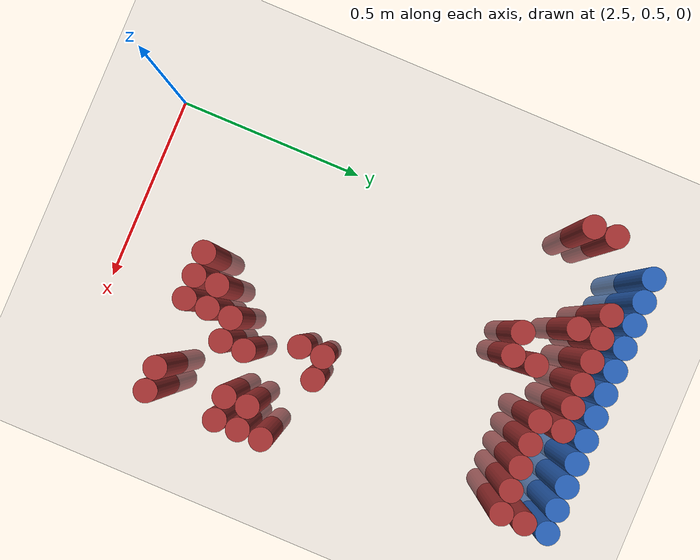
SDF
<sdf version="1.6">
 <world name="default">
  <model name="ground_plane">
   <static>1</static>
   <link name="link">
    <collision name="collision">
     <geometry><plane><normal>0 0 1</normal><size>100 100</size></plane></geometry>
     <surface><friction><ode><mu>100</mu><mu2>50</mu2></ode></friction></surface>
    </collision>
    <visual name="visual">
     <cast_shadows>0</cast_shadows>
     <geometry><plane><normal>0 0 1</normal><size>100 100</size></plane></geometry>
     <material>
      <script><uri>file://media/materials/scripts/gazebo.material</uri><name>Gazebo/Grey</name></script>
     </material>
    </visual>
   </link>
  </model>
  <model name="unit_cylinder_102">
   <static>1</static>
   <pose>2.490000 1.770000 0.000000 0.000000 0.000000 0.000000</pose>
   <link name="link">
    <inertial>
     <mass>1</mass>
     <inertia><ixx>0.145833</ixx><ixy>0</ixy><ixz>0</ixz><iyy>0.145833</iyy><iyz>0</iyz><izz>0.125</izz></inertia>
    </inertial>
    <collision name="collision">
     <geometry><cylinder><radius>0.030000</radius><length>0.5</length></cylinder></geometry>
    </collision>
    <visual name="visual">
     <geometry><cylinder><radius>0.030000</radius><length>0.5</length></cylinder></geometry>
     <material>
      <ambient>0.152000 0.379000 0.720000 1</ambient>
      <diffuse>0.152000 0.379000 0.720000 1</diffuse>
     </material>
     <material>
      <script><name>Gazebo/Grey</name><uri>file://media/materials/scripts/gazebo.material</uri></script>
     </material>
    </visual>
   </link>
  </model>
  <model name="unit_cylinder_103">
   <static>1</static>
   <pose>2.550000 1.770000 0.000000 0.000000 0.000000 0.000000</pose>
   <link name="link">
    <inertial>
     <mass>1</mass>
     <inertia><ixx>0.145833</ixx><ixy>0</ixy><ixz>0</ixz><iyy>0.145833</iyy><iyz>0</iyz><izz>0.125</izz></inertia>
    </inertial>
    <collision name="collision">
     <geometry><cylinder><radius>0.030000</radius><length>0.5</length></cylinder></geometry>
    </collision>
    <visual name="visual">
     <geometry><cylinder><radius>0.030000</radius><length>0.5</length></cylinder></geometry>
     <material>
      <ambient>0.152000 0.379000 0.720000 1</ambient>
      <diffuse>0.152000 0.379000 0.720000 1</diffuse>
     </material>
     <material>
      <script><name>Gazebo/Grey</name><uri>file://media/materials/scripts/gazebo.material</uri></script>
     </material>
    </visual>
   </link>
  </model>
  <model name="unit_cylinder_104">
   <static>1</static>
   <pose>2.610000 1.770000 0.000000 0.000000 0.000000 0.000000</pose>
   <link name="link">
    <inertial>
     <mass>1</mass>
     <inertia><ixx>0.145833</ixx><ixy>0</ixy><ixz>0</ixz><iyy>0.145833</iyy><iyz>0</iyz><izz>0.125</izz></inertia>
    </inertial>
    <collision name="collision">
     <geometry><cylinder><radius>0.030000</radius><length>0.5</length></cylinder></geometry>
    </collision>
    <visual name="visual">
     <geometry><cylinder><radius>0.030000</radius><length>0.5</length></cylinder></geometry>
     <material>
      <ambient>0.152000 0.379000 0.720000 1</ambient>
      <diffuse>0.152000 0.379000 0.720000 1</diffuse>
     </material>
     <material>
      <script><name>Gazebo/Grey</name><uri>file://media/materials/scripts/gazebo.material</uri></script>
     </material>
    </visual>
   </link>
  </model>
  <model name="unit_cylinder_105">
   <static>1</static>
   <pose>2.670000 1.770000 0.000000 0.000000 0.000000 0.000000</pose>
   <link name="link">
    <inertial>
     <mass>1</mass>
     <inertia><ixx>0.145833</ixx><ixy>0</ixy><ixz>0</ixz><iyy>0.145833</iyy><iyz>0</iyz><izz>0.125</izz></inertia>
    </inertial>
    <collision name="collision">
     <geometry><cylinder><radius>0.030000</radius><length>0.5</length></cylinder></geometry>
    </collision>
    <visual name="visual">
     <geometry><cylinder><radius>0.030000</radius><length>0.5</length></cylinder></geometry>
     <material>
      <ambient>0.152000 0.379000 0.720000 1</ambient>
      <diffuse>0.152000 0.379000 0.720000 1</diffuse>
     </material>
     <material>
      <script><name>Gazebo/Grey</name><uri>file://media/materials/scripts/gazebo.material</uri></script>
     </material>
    </visual>
   </link>
  </model>
  <model name="unit_cylinder_106">
   <static>1</static>
   <pose>2.730000 1.770000 0.000000 0.000000 0.000000 0.000000</pose>
   <link name="link">
    <inertial>
     <mass>1</mass>
     <inertia><ixx>0.145833</ixx><ixy>0</ixy><ixz>0</ixz><iyy>0.145833</iyy><iyz>0</iyz><izz>0.125</izz></inertia>
    </inertial>
    <collision name="collision">
     <geometry><cylinder><radius>0.030000</radius><length>0.5</length></cylinder></geometry>
    </collision>
    <visual name="visual">
     <geometry><cylinder><radius>0.030000</radius><length>0.5</length></cylinder></geometry>
     <material>
      <ambient>0.152000 0.379000 0.720000 1</ambient>
      <diffuse>0.152000 0.379000 0.720000 1</diffuse>
     </material>
     <material>
      <script><name>Gazebo/Grey</name><uri>file://media/materials/scripts/gazebo.material</uri></script>
     </material>
    </visual>
   </link>
  </model>
  <model name="unit_cylinder_107">
   <static>1</static>
   <pose>2.790000 1.770000 0.000000 0.000000 0.000000 0.000000</pose>
   <link name="link">
    <inertial>
     <mass>1</mass>
     <inertia><ixx>0.145833</ixx><ixy>0</ixy><ixz>0</ixz><iyy>0.145833</iyy><iyz>0</iyz><izz>0.125</izz></inertia>
    </inertial>
    <collision name="collision">
     <geometry><cylinder><radius>0.030000</radius><length>0.5</length></cylinder></geometry>
    </collision>
    <visual name="visual">
     <geometry><cylinder><radius>0.030000</radius><length>0.5</length></cylinder></geometry>
     <material>
      <ambient>0.152000 0.379000 0.720000 1</ambient>
      <diffuse>0.152000 0.379000 0.720000 1</diffuse>
     </material>
     <material>
      <script><name>Gazebo/Grey</name><uri>file://media/materials/scripts/gazebo.material</uri></script>
     </material>
    </visual>
   </link>
  </model>
  <model name="unit_cylinder_108">
   <static>1</static>
   <pose>2.850000 1.770000 0.000000 0.000000 0.000000 0.000000</pose>
   <link name="link">
    <inertial>
     <mass>1</mass>
     <inertia><ixx>0.145833</ixx><ixy>0</ixy><ixz>0</ixz><iyy>0.145833</iyy><iyz>0</iyz><izz>0.125</izz></inertia>
    </inertial>
    <collision name="collision">
     <geometry><cylinder><radius>0.030000</radius><length>0.5</length></cylinder></geometry>
    </collision>
    <visual name="visual">
     <geometry><cylinder><radius>0.030000</radius><length>0.5</length></cylinder></geometry>
     <material>
      <ambient>0.152000 0.379000 0.720000 1</ambient>
      <diffuse>0.152000 0.379000 0.720000 1</diffuse>
     </material>
     <material>
      <script><name>Gazebo/Grey</name><uri>file://media/materials/scripts/gazebo.material</uri></script>
     </material>
    </visual>
   </link>
  </model>
  <model name="unit_cylinder_109">
   <static>1</static>
   <pose>2.910000 1.770000 0.000000 0.000000 0.000000 0.000000</pose>
   <link name="link">
    <inertial>
     <mass>1</mass>
     <inertia><ixx>0.145833</ixx><ixy>0</ixy><ixz>0</ixz><iyy>0.145833</iyy><iyz>0</iyz><izz>0.125</izz></inertia>
    </inertial>
    <collision name="collision">
     <geometry><cylinder><radius>0.030000</radius><length>0.5</length></cylinder></geometry>
    </collision>
    <visual name="visual">
     <geometry><cylinder><radius>0.030000</radius><length>0.5</length></cylinder></geometry>
     <material>
      <ambient>0.152000 0.379000 0.720000 1</ambient>
      <diffuse>0.152000 0.379000 0.720000 1</diffuse>
     </material>
     <material>
      <script><name>Gazebo/Grey</name><uri>file://media/materials/scripts/gazebo.material</uri></script>
     </material>
    </visual>
   </link>
  </model>
  <model name="unit_cylinder_110">
   <static>1</static>
   <pose>2.970000 1.770000 0.000000 0.000000 0.000000 0.000000</pose>
   <link name="link">
    <inertial>
     <mass>1</mass>
     <inertia><ixx>0.145833</ixx><ixy>0</ixy><ixz>0</ixz><iyy>0.145833</iyy><iyz>0</iyz><izz>0.125</izz></inertia>
    </inertial>
    <collision name="collision">
     <geometry><cylinder><radius>0.030000</radius><length>0.5</length></cylinder></geometry>
    </collision>
    <visual name="visual">
     <geometry><cylinder><radius>0.030000</radius><length>0.5</length></cylinder></geometry>
     <material>
      <ambient>0.152000 0.379000 0.720000 1</ambient>
      <diffuse>0.152000 0.379000 0.720000 1</diffuse>
     </material>
     <material>
      <script><name>Gazebo/Grey</name><uri>file://media/materials/scripts/gazebo.material</uri></script>
     </material>
    </visual>
   </link>
  </model>
  <model name="unit_cylinder_111">
   <static>1</static>
   <pose>3.030000 1.770000 0.000000 0.000000 0.000000 0.000000</pose>
   <link name="link">
    <inertial>
     <mass>1</mass>
     <inertia><ixx>0.145833</ixx><ixy>0</ixy><ixz>0</ixz><iyy>0.145833</iyy><iyz>0</iyz><izz>0.125</izz></inertia>
    </inertial>
    <collision name="collision">
     <geometry><cylinder><radius>0.030000</radius><length>0.5</length></cylinder></geometry>
    </collision>
    <visual name="visual">
     <geometry><cylinder><radius>0.030000</radius><length>0.5</length></cylinder></geometry>
     <material>
      <ambient>0.152000 0.379000 0.720000 1</ambient>
      <diffuse>0.152000 0.379000 0.720000 1</diffuse>
     </material>
     <material>
      <script><name>Gazebo/Grey</name><uri>file://media/materials/scripts/gazebo.material</uri></script>
     </material>
    </visual>
   </link>
  </model>
  <model name="unit_cylinder_112">
   <static>1</static>
   <pose>3.090000 1.770000 0.000000 0.000000 0.000000 0.000000</pose>
   <link name="link">
    <inertial>
     <mass>1</mass>
     <inertia><ixx>0.145833</ixx><ixy>0</ixy><ixz>0</ixz><iyy>0.145833</iyy><iyz>0</iyz><izz>0.125</izz></inertia>
    </inertial>
    <collision name="collision">
     <geometry><cylinder><radius>0.030000</radius><length>0.5</length></cylinder></geometry>
    </collision>
    <visual name="visual">
     <geometry><cylinder><radius>0.030000</radius><length>0.5</length></cylinder></geometry>
     <material>
      <ambient>0.152000 0.379000 0.720000 1</ambient>
      <diffuse>0.152000 0.379000 0.720000 1</diffuse>
     </material>
     <material>
      <script><name>Gazebo/Grey</name><uri>file://media/materials/scripts/gazebo.material</uri></script>
     </material>
    </visual>
   </link>
  </model>
  <model name="unit_cylinder_113">
   <static>1</static>
   <pose>3.150000 1.770000 0.000000 0.000000 0.000000 0.000000</pose>
   <link name="link">
    <inertial>
     <mass>1</mass>
     <inertia><ixx>0.145833</ixx><ixy>0</ixy><ixz>0</ixz><iyy>0.145833</iyy><iyz>0</iyz><izz>0.125</izz></inertia>
    </inertial>
    <collision name="collision">
     <geometry><cylinder><radius>0.030000</radius><length>0.5</length></cylinder></geometry>
    </collision>
    <visual name="visual">
     <geometry><cylinder><radius>0.030000</radius><length>0.5</length></cylinder></geometry>
     <material>
      <ambient>0.152000 0.379000 0.720000 1</ambient>
      <diffuse>0.152000 0.379000 0.720000 1</diffuse>
     </material>
     <material>
      <script><name>Gazebo/Grey</name><uri>file://media/materials/scripts/gazebo.material</uri></script>
     </material>
    </visual>
   </link>
  </model>
  <model name="unit_cylinder_127">
   <static>1</static>
   <pose>2.610000 1.710000 0.000000 0.000000 0.000000 0.000000</pose>
   <link name="link">
    <inertial>
     <mass>1</mass>
     <inertia><ixx>0.145833</ixx><ixy>0</ixy><ixz>0</ixz><iyy>0.145833</iyy><iyz>0</iyz><izz>0.125</izz></inertia>
    </inertial>
    <collision name="collision">
     <geometry><cylinder><radius>0.030000</radius><length>0.5</length></cylinder></geometry>
    </collision>
    <visual name="visual">
     <geometry><cylinder><radius>0.030000</radius><length>0.5</length></cylinder></geometry>
     <material>
      <ambient>0.648000 0.192000 0.192000 1</ambient>
      <diffuse>0.648000 0.192000 0.192000 1</diffuse>
     </material>
     <material>
      <script><name>Gazebo/Grey</name><uri>file://media/materials/scripts/gazebo.material</uri></script>
     </material>
    </visual>
   </link>
  </model>
  <model name="unit_cylinder_128">
   <static>1</static>
   <pose>2.670000 1.710000 0.000000 0.000000 0.000000 0.000000</pose>
   <link name="link">
    <inertial>
     <mass>1</mass>
     <inertia><ixx>0.145833</ixx><ixy>0</ixy><ixz>0</ixz><iyy>0.145833</iyy><iyz>0</iyz><izz>0.125</izz></inertia>
    </inertial>
    <collision name="collision">
     <geometry><cylinder><radius>0.030000</radius><length>0.5</length></cylinder></geometry>
    </collision>
    <visual name="visual">
     <geometry><cylinder><radius>0.030000</radius><length>0.5</length></cylinder></geometry>
     <material>
      <ambient>0.648000 0.192000 0.192000 1</ambient>
      <diffuse>0.648000 0.192000 0.192000 1</diffuse>
     </material>
     <material>
      <script><name>Gazebo/Grey</name><uri>file://media/materials/scripts/gazebo.material</uri></script>
     </material>
    </visual>
   </link>
  </model>
  <model name="unit_cylinder_129">
   <static>1</static>
   <pose>2.730000 1.710000 0.000000 0.000000 0.000000 0.000000</pose>
   <link name="link">
    <inertial>
     <mass>1</mass>
     <inertia><ixx>0.145833</ixx><ixy>0</ixy><ixz>0</ixz><iyy>0.145833</iyy><iyz>0</iyz><izz>0.125</izz></inertia>
    </inertial>
    <collision name="collision">
     <geometry><cylinder><radius>0.030000</radius><length>0.5</length></cylinder></geometry>
    </collision>
    <visual name="visual">
     <geometry><cylinder><radius>0.030000</radius><length>0.5</length></cylinder></geometry>
     <material>
      <ambient>0.648000 0.192000 0.192000 1</ambient>
      <diffuse>0.648000 0.192000 0.192000 1</diffuse>
     </material>
     <material>
      <script><name>Gazebo/Grey</name><uri>file://media/materials/scripts/gazebo.material</uri></script>
     </material>
    </visual>
   </link>
  </model>
  <model name="unit_cylinder_130">
   <static>1</static>
   <pose>2.790000 1.710000 0.000000 0.000000 0.000000 0.000000</pose>
   <link name="link">
    <inertial>
     <mass>1</mass>
     <inertia><ixx>0.145833</ixx><ixy>0</ixy><ixz>0</ixz><iyy>0.145833</iyy><iyz>0</iyz><izz>0.125</izz></inertia>
    </inertial>
    <collision name="collision">
     <geometry><cylinder><radius>0.030000</radius><length>0.5</length></cylinder></geometry>
    </collision>
    <visual name="visual">
     <geometry><cylinder><radius>0.030000</radius><length>0.5</length></cylinder></geometry>
     <material>
      <ambient>0.648000 0.192000 0.192000 1</ambient>
      <diffuse>0.648000 0.192000 0.192000 1</diffuse>
     </material>
     <material>
      <script><name>Gazebo/Grey</name><uri>file://media/materials/scripts/gazebo.material</uri></script>
     </material>
    </visual>
   </link>
  </model>
  <model name="unit_cylinder_131">
   <static>1</static>
   <pose>2.850000 1.710000 0.000000 0.000000 0.000000 0.000000</pose>
   <link name="link">
    <inertial>
     <mass>1</mass>
     <inertia><ixx>0.145833</ixx><ixy>0</ixy><ixz>0</ixz><iyy>0.145833</iyy><iyz>0</iyz><izz>0.125</izz></inertia>
    </inertial>
    <collision name="collision">
     <geometry><cylinder><radius>0.030000</radius><length>0.5</length></cylinder></geometry>
    </collision>
    <visual name="visual">
     <geometry><cylinder><radius>0.030000</radius><length>0.5</length></cylinder></geometry>
     <material>
      <ambient>0.648000 0.192000 0.192000 1</ambient>
      <diffuse>0.648000 0.192000 0.192000 1</diffuse>
     </material>
     <material>
      <script><name>Gazebo/Grey</name><uri>file://media/materials/scripts/gazebo.material</uri></script>
     </material>
    </visual>
   </link>
  </model>
  <model name="unit_cylinder_132">
   <static>1</static>
   <pose>2.910000 1.710000 0.000000 0.000000 0.000000 0.000000</pose>
   <link name="link">
    <inertial>
     <mass>1</mass>
     <inertia><ixx>0.145833</ixx><ixy>0</ixy><ixz>0</ixz><iyy>0.145833</iyy><iyz>0</iyz><izz>0.125</izz></inertia>
    </inertial>
    <collision name="collision">
     <geometry><cylinder><radius>0.030000</radius><length>0.5</length></cylinder></geometry>
    </collision>
    <visual name="visual">
     <geometry><cylinder><radius>0.030000</radius><length>0.5</length></cylinder></geometry>
     <material>
      <ambient>0.648000 0.192000 0.192000 1</ambient>
      <diffuse>0.648000 0.192000 0.192000 1</diffuse>
     </material>
     <material>
      <script><name>Gazebo/Grey</name><uri>file://media/materials/scripts/gazebo.material</uri></script>
     </material>
    </visual>
   </link>
  </model>
  <model name="unit_cylinder_133">
   <static>1</static>
   <pose>3.150000 1.710000 0.000000 0.000000 0.000000 0.000000</pose>
   <link name="link">
    <inertial>
     <mass>1</mass>
     <inertia><ixx>0.145833</ixx><ixy>0</ixy><ixz>0</ixz><iyy>0.145833</iyy><iyz>0</iyz><izz>0.125</izz></inertia>
    </inertial>
    <collision name="collision">
     <geometry><cylinder><radius>0.030000</radius><length>0.5</length></cylinder></geometry>
    </collision>
    <visual name="visual">
     <geometry><cylinder><radius>0.030000</radius><length>0.5</length></cylinder></geometry>
     <material>
      <ambient>0.648000 0.192000 0.192000 1</ambient>
      <diffuse>0.648000 0.192000 0.192000 1</diffuse>
     </material>
     <material>
      <script><name>Gazebo/Grey</name><uri>file://media/materials/scripts/gazebo.material</uri></script>
     </material>
    </visual>
   </link>
  </model>
  <model name="unit_cylinder_143">
   <static>1</static>
   <pose>2.430000 1.650000 0.000000 0.000000 0.000000 0.000000</pose>
   <link name="link">
    <inertial>
     <mass>1</mass>
     <inertia><ixx>0.145833</ixx><ixy>0</ixy><ixz>0</ixz><iyy>0.145833</iyy><iyz>0</iyz><izz>0.125</izz></inertia>
    </inertial>
    <collision name="collision">
     <geometry><cylinder><radius>0.030000</radius><length>0.5</length></cylinder></geometry>
    </collision>
    <visual name="visual">
     <geometry><cylinder><radius>0.030000</radius><length>0.5</length></cylinder></geometry>
     <material>
      <ambient>0.648000 0.192000 0.192000 1</ambient>
      <diffuse>0.648000 0.192000 0.192000 1</diffuse>
     </material>
     <material>
      <script><name>Gazebo/Grey</name><uri>file://media/materials/scripts/gazebo.material</uri></script>
     </material>
    </visual>
   </link>
  </model>
  <model name="unit_cylinder_144">
   <static>1</static>
   <pose>2.670000 1.650000 0.000000 0.000000 0.000000 0.000000</pose>
   <link name="link">
    <inertial>
     <mass>1</mass>
     <inertia><ixx>0.145833</ixx><ixy>0</ixy><ixz>0</ixz><iyy>0.145833</iyy><iyz>0</iyz><izz>0.125</izz></inertia>
    </inertial>
    <collision name="collision">
     <geometry><cylinder><radius>0.030000</radius><length>0.5</length></cylinder></geometry>
    </collision>
    <visual name="visual">
     <geometry><cylinder><radius>0.030000</radius><length>0.5</length></cylinder></geometry>
     <material>
      <ambient>0.648000 0.192000 0.192000 1</ambient>
      <diffuse>0.648000 0.192000 0.192000 1</diffuse>
     </material>
     <material>
      <script><name>Gazebo/Grey</name><uri>file://media/materials/scripts/gazebo.material</uri></script>
     </material>
    </visual>
   </link>
  </model>
  <model name="unit_cylinder_145">
   <static>1</static>
   <pose>2.910000 1.650000 0.000000 0.000000 0.000000 0.000000</pose>
   <link name="link">
    <inertial>
     <mass>1</mass>
     <inertia><ixx>0.145833</ixx><ixy>0</ixy><ixz>0</ixz><iyy>0.145833</iyy><iyz>0</iyz><izz>0.125</izz></inertia>
    </inertial>
    <collision name="collision">
     <geometry><cylinder><radius>0.030000</radius><length>0.5</length></cylinder></geometry>
    </collision>
    <visual name="visual">
     <geometry><cylinder><radius>0.030000</radius><length>0.5</length></cylinder></geometry>
     <material>
      <ambient>0.648000 0.192000 0.192000 1</ambient>
      <diffuse>0.648000 0.192000 0.192000 1</diffuse>
     </material>
     <material>
      <script><name>Gazebo/Grey</name><uri>file://media/materials/scripts/gazebo.material</uri></script>
     </material>
    </visual>
   </link>
  </model>
  <model name="unit_cylinder_146">
   <static>1</static>
   <pose>2.970000 1.650000 0.000000 0.000000 0.000000 0.000000</pose>
   <link name="link">
    <inertial>
     <mass>1</mass>
     <inertia><ixx>0.145833</ixx><ixy>0</ixy><ixz>0</ixz><iyy>0.145833</iyy><iyz>0</iyz><izz>0.125</izz></inertia>
    </inertial>
    <collision name="collision">
     <geometry><cylinder><radius>0.030000</radius><length>0.5</length></cylinder></geometry>
    </collision>
    <visual name="visual">
     <geometry><cylinder><radius>0.030000</radius><length>0.5</length></cylinder></geometry>
     <material>
      <ambient>0.648000 0.192000 0.192000 1</ambient>
      <diffuse>0.648000 0.192000 0.192000 1</diffuse>
     </material>
     <material>
      <script><name>Gazebo/Grey</name><uri>file://media/materials/scripts/gazebo.material</uri></script>
     </material>
    </visual>
   </link>
  </model>
  <model name="unit_cylinder_147">
   <static>1</static>
   <pose>3.030000 1.650000 0.000000 0.000000 0.000000 0.000000</pose>
   <link name="link">
    <inertial>
     <mass>1</mass>
     <inertia><ixx>0.145833</ixx><ixy>0</ixy><ixz>0</ixz><iyy>0.145833</iyy><iyz>0</iyz><izz>0.125</izz></inertia>
    </inertial>
    <collision name="collision">
     <geometry><cylinder><radius>0.030000</radius><length>0.5</length></cylinder></geometry>
    </collision>
    <visual name="visual">
     <geometry><cylinder><radius>0.030000</radius><length>0.5</length></cylinder></geometry>
     <material>
      <ambient>0.648000 0.192000 0.192000 1</ambient>
      <diffuse>0.648000 0.192000 0.192000 1</diffuse>
     </material>
     <material>
      <script><name>Gazebo/Grey</name><uri>file://media/materials/scripts/gazebo.material</uri></script>
     </material>
    </visual>
   </link>
  </model>
  <model name="unit_cylinder_148">
   <static>1</static>
   <pose>3.090000 1.650000 0.000000 0.000000 0.000000 0.000000</pose>
   <link name="link">
    <inertial>
     <mass>1</mass>
     <inertia><ixx>0.145833</ixx><ixy>0</ixy><ixz>0</ixz><iyy>0.145833</iyy><iyz>0</iyz><izz>0.125</izz></inertia>
    </inertial>
    <collision name="collision">
     <geometry><cylinder><radius>0.030000</radius><length>0.5</length></cylinder></geometry>
    </collision>
    <visual name="visual">
     <geometry><cylinder><radius>0.030000</radius><length>0.5</length></cylinder></geometry>
     <material>
      <ambient>0.648000 0.192000 0.192000 1</ambient>
      <diffuse>0.648000 0.192000 0.192000 1</diffuse>
     </material>
     <material>
      <script><name>Gazebo/Grey</name><uri>file://media/materials/scripts/gazebo.material</uri></script>
     </material>
    </visual>
   </link>
  </model>
  <model name="unit_cylinder_149">
   <static>1</static>
   <pose>3.150000 1.650000 0.000000 0.000000 0.000000 0.000000</pose>
   <link name="link">
    <inertial>
     <mass>1</mass>
     <inertia><ixx>0.145833</ixx><ixy>0</ixy><ixz>0</ixz><iyy>0.145833</iyy><iyz>0</iyz><izz>0.125</izz></inertia>
    </inertial>
    <collision name="collision">
     <geometry><cylinder><radius>0.030000</radius><length>0.5</length></cylinder></geometry>
    </collision>
    <visual name="visual">
     <geometry><cylinder><radius>0.030000</radius><length>0.5</length></cylinder></geometry>
     <material>
      <ambient>0.648000 0.192000 0.192000 1</ambient>
      <diffuse>0.648000 0.192000 0.192000 1</diffuse>
     </material>
     <material>
      <script><name>Gazebo/Grey</name><uri>file://media/materials/scripts/gazebo.material</uri></script>
     </material>
    </visual>
   </link>
  </model>
  <model name="unit_cylinder_155">
   <static>1</static>
   <pose>2.430000 1.590000 0.000000 0.000000 0.000000 0.000000</pose>
   <link name="link">
    <inertial>
     <mass>1</mass>
     <inertia><ixx>0.145833</ixx><ixy>0</ixy><ixz>0</ixz><iyy>0.145833</iyy><iyz>0</iyz><izz>0.125</izz></inertia>
    </inertial>
    <collision name="collision">
     <geometry><cylinder><radius>0.030000</radius><length>0.5</length></cylinder></geometry>
    </collision>
    <visual name="visual">
     <geometry><cylinder><radius>0.030000</radius><length>0.5</length></cylinder></geometry>
     <material>
      <ambient>0.648000 0.192000 0.192000 1</ambient>
      <diffuse>0.648000 0.192000 0.192000 1</diffuse>
     </material>
     <material>
      <script><name>Gazebo/Grey</name><uri>file://media/materials/scripts/gazebo.material</uri></script>
     </material>
    </visual>
   </link>
  </model>
  <model name="unit_cylinder_156">
   <static>1</static>
   <pose>2.790000 1.590000 0.000000 0.000000 0.000000 0.000000</pose>
   <link name="link">
    <inertial>
     <mass>1</mass>
     <inertia><ixx>0.145833</ixx><ixy>0</ixy><ixz>0</ixz><iyy>0.145833</iyy><iyz>0</iyz><izz>0.125</izz></inertia>
    </inertial>
    <collision name="collision">
     <geometry><cylinder><radius>0.030000</radius><length>0.5</length></cylinder></geometry>
    </collision>
    <visual name="visual">
     <geometry><cylinder><radius>0.030000</radius><length>0.5</length></cylinder></geometry>
     <material>
      <ambient>0.648000 0.192000 0.192000 1</ambient>
      <diffuse>0.648000 0.192000 0.192000 1</diffuse>
     </material>
     <material>
      <script><name>Gazebo/Grey</name><uri>file://media/materials/scripts/gazebo.material</uri></script>
     </material>
    </visual>
   </link>
  </model>
  <model name="unit_cylinder_160">
   <static>1</static>
   <pose>2.730000 1.530000 0.000000 0.000000 0.000000 0.000000</pose>
   <link name="link">
    <inertial>
     <mass>1</mass>
     <inertia><ixx>0.145833</ixx><ixy>0</ixy><ixz>0</ixz><iyy>0.145833</iyy><iyz>0</iyz><izz>0.125</izz></inertia>
    </inertial>
    <collision name="collision">
     <geometry><cylinder><radius>0.030000</radius><length>0.5</length></cylinder></geometry>
    </collision>
    <visual name="visual">
     <geometry><cylinder><radius>0.030000</radius><length>0.5</length></cylinder></geometry>
     <material>
      <ambient>0.648000 0.192000 0.192000 1</ambient>
      <diffuse>0.648000 0.192000 0.192000 1</diffuse>
     </material>
     <material>
      <script><name>Gazebo/Grey</name><uri>file://media/materials/scripts/gazebo.material</uri></script>
     </material>
    </visual>
   </link>
  </model>
  <model name="unit_cylinder_161">
   <static>1</static>
   <pose>2.790000 1.530000 0.000000 0.000000 0.000000 0.000000</pose>
   <link name="link">
    <inertial>
     <mass>1</mass>
     <inertia><ixx>0.145833</ixx><ixy>0</ixy><ixz>0</ixz><iyy>0.145833</iyy><iyz>0</iyz><izz>0.125</izz></inertia>
    </inertial>
    <collision name="collision">
     <geometry><cylinder><radius>0.030000</radius><length>0.5</length></cylinder></geometry>
    </collision>
    <visual name="visual">
     <geometry><cylinder><radius>0.030000</radius><length>0.5</length></cylinder></geometry>
     <material>
      <ambient>0.648000 0.192000 0.192000 1</ambient>
      <diffuse>0.648000 0.192000 0.192000 1</diffuse>
     </material>
     <material>
      <script><name>Gazebo/Grey</name><uri>file://media/materials/scripts/gazebo.material</uri></script>
     </material>
    </visual>
   </link>
  </model>
  <model name="unit_cylinder_184">
   <static>1</static>
   <pose>2.970000 1.110000 0.000000 0.000000 0.000000 0.000000</pose>
   <link name="link">
    <inertial>
     <mass>1</mass>
     <inertia><ixx>0.145833</ixx><ixy>0</ixy><ixz>0</ixz><iyy>0.145833</iyy><iyz>0</iyz><izz>0.125</izz></inertia>
    </inertial>
    <collision name="collision">
     <geometry><cylinder><radius>0.030000</radius><length>0.5</length></cylinder></geometry>
    </collision>
    <visual name="visual">
     <geometry><cylinder><radius>0.030000</radius><length>0.5</length></cylinder></geometry>
     <material>
      <ambient>0.648000 0.192000 0.192000 1</ambient>
      <diffuse>0.648000 0.192000 0.192000 1</diffuse>
     </material>
     <material>
      <script><name>Gazebo/Grey</name><uri>file://media/materials/scripts/gazebo.material</uri></script>
     </material>
    </visual>
   </link>
  </model>
  <model name="unit_cylinder_185">
   <static>1</static>
   <pose>3.030000 1.110000 0.000000 0.000000 0.000000 0.000000</pose>
   <link name="link">
    <inertial>
     <mass>1</mass>
     <inertia><ixx>0.145833</ixx><ixy>0</ixy><ixz>0</ixz><iyy>0.145833</iyy><iyz>0</iyz><izz>0.125</izz></inertia>
    </inertial>
    <collision name="collision">
     <geometry><cylinder><radius>0.030000</radius><length>0.5</length></cylinder></geometry>
    </collision>
    <visual name="visual">
     <geometry><cylinder><radius>0.030000</radius><length>0.5</length></cylinder></geometry>
     <material>
      <ambient>0.648000 0.192000 0.192000 1</ambient>
      <diffuse>0.648000 0.192000 0.192000 1</diffuse>
     </material>
     <material>
      <script><name>Gazebo/Grey</name><uri>file://media/materials/scripts/gazebo.material</uri></script>
     </material>
    </visual>
   </link>
  </model>
  <model name="unit_cylinder_187">
   <static>1</static>
   <pose>2.970000 1.050000 0.000000 0.000000 0.000000 0.000000</pose>
   <link name="link">
    <inertial>
     <mass>1</mass>
     <inertia><ixx>0.145833</ixx><ixy>0</ixy><ixz>0</ixz><iyy>0.145833</iyy><iyz>0</iyz><izz>0.125</izz></inertia>
    </inertial>
    <collision name="collision">
     <geometry><cylinder><radius>0.030000</radius><length>0.5</length></cylinder></geometry>
    </collision>
    <visual name="visual">
     <geometry><cylinder><radius>0.030000</radius><length>0.5</length></cylinder></geometry>
     <material>
      <ambient>0.648000 0.192000 0.192000 1</ambient>
      <diffuse>0.648000 0.192000 0.192000 1</diffuse>
     </material>
     <material>
      <script><name>Gazebo/Grey</name><uri>file://media/materials/scripts/gazebo.material</uri></script>
     </material>
    </visual>
   </link>
  </model>
  <model name="unit_cylinder_188">
   <static>1</static>
   <pose>3.210000 1.050000 0.000000 0.000000 0.000000 0.000000</pose>
   <link name="link">
    <inertial>
     <mass>1</mass>
     <inertia><ixx>0.145833</ixx><ixy>0</ixy><ixz>0</ixz><iyy>0.145833</iyy><iyz>0</iyz><izz>0.125</izz></inertia>
    </inertial>
    <collision name="collision">
     <geometry><cylinder><radius>0.030000</radius><length>0.5</length></cylinder></geometry>
    </collision>
    <visual name="visual">
     <geometry><cylinder><radius>0.030000</radius><length>0.5</length></cylinder></geometry>
     <material>
      <ambient>0.648000 0.192000 0.192000 1</ambient>
      <diffuse>0.648000 0.192000 0.192000 1</diffuse>
     </material>
     <material>
      <script><name>Gazebo/Grey</name><uri>file://media/materials/scripts/gazebo.material</uri></script>
     </material>
    </visual>
   </link>
  </model>
  <model name="unit_cylinder_190">
   <static>1</static>
   <pose>3.150000 0.990000 0.000000 0.000000 0.000000 0.000000</pose>
   <link name="link">
    <inertial>
     <mass>1</mass>
     <inertia><ixx>0.145833</ixx><ixy>0</ixy><ixz>0</ixz><iyy>0.145833</iyy><iyz>0</iyz><izz>0.125</izz></inertia>
    </inertial>
    <collision name="collision">
     <geometry><cylinder><radius>0.030000</radius><length>0.5</length></cylinder></geometry>
    </collision>
    <visual name="visual">
     <geometry><cylinder><radius>0.030000</radius><length>0.5</length></cylinder></geometry>
     <material>
      <ambient>0.648000 0.192000 0.192000 1</ambient>
      <diffuse>0.648000 0.192000 0.192000 1</diffuse>
     </material>
     <material>
      <script><name>Gazebo/Grey</name><uri>file://media/materials/scripts/gazebo.material</uri></script>
     </material>
    </visual>
   </link>
  </model>
  <model name="unit_cylinder_191">
   <static>1</static>
   <pose>3.210000 0.990000 0.000000 0.000000 0.000000 0.000000</pose>
   <link name="link">
    <inertial>
     <mass>1</mass>
     <inertia><ixx>0.145833</ixx><ixy>0</ixy><ixz>0</ixz><iyy>0.145833</iyy><iyz>0</iyz><izz>0.125</izz></inertia>
    </inertial>
    <collision name="collision">
     <geometry><cylinder><radius>0.030000</radius><length>0.5</length></cylinder></geometry>
    </collision>
    <visual name="visual">
     <geometry><cylinder><radius>0.030000</radius><length>0.5</length></cylinder></geometry>
     <material>
      <ambient>0.648000 0.192000 0.192000 1</ambient>
      <diffuse>0.648000 0.192000 0.192000 1</diffuse>
     </material>
     <material>
      <script><name>Gazebo/Grey</name><uri>file://media/materials/scripts/gazebo.material</uri></script>
     </material>
    </visual>
   </link>
  </model>
  <model name="unit_cylinder_195">
   <static>1</static>
   <pose>3.030000 0.930000 0.000000 0.000000 0.000000 0.000000</pose>
   <link name="link">
    <inertial>
     <mass>1</mass>
     <inertia><ixx>0.145833</ixx><ixy>0</ixy><ixz>0</ixz><iyy>0.145833</iyy><iyz>0</iyz><izz>0.125</izz></inertia>
    </inertial>
    <collision name="collision">
     <geometry><cylinder><radius>0.030000</radius><length>0.5</length></cylinder></geometry>
    </collision>
    <visual name="visual">
     <geometry><cylinder><radius>0.030000</radius><length>0.5</length></cylinder></geometry>
     <material>
      <ambient>0.648000 0.192000 0.192000 1</ambient>
      <diffuse>0.648000 0.192000 0.192000 1</diffuse>
     </material>
     <material>
      <script><name>Gazebo/Grey</name><uri>file://media/materials/scripts/gazebo.material</uri></script>
     </material>
    </visual>
   </link>
  </model>
  <model name="unit_cylinder_196">
   <static>1</static>
   <pose>3.150000 0.930000 0.000000 0.000000 0.000000 0.000000</pose>
   <link name="link">
    <inertial>
     <mass>1</mass>
     <inertia><ixx>0.145833</ixx><ixy>0</ixy><ixz>0</ixz><iyy>0.145833</iyy><iyz>0</iyz><izz>0.125</izz></inertia>
    </inertial>
    <collision name="collision">
     <geometry><cylinder><radius>0.030000</radius><length>0.5</length></cylinder></geometry>
    </collision>
    <visual name="visual">
     <geometry><cylinder><radius>0.030000</radius><length>0.5</length></cylinder></geometry>
     <material>
      <ambient>0.648000 0.192000 0.192000 1</ambient>
      <diffuse>0.648000 0.192000 0.192000 1</diffuse>
     </material>
     <material>
      <script><name>Gazebo/Grey</name><uri>file://media/materials/scripts/gazebo.material</uri></script>
     </material>
    </visual>
   </link>
  </model>
  <model name="unit_cylinder_197">
   <static>1</static>
   <pose>3.210000 0.930000 0.000000 0.000000 0.000000 0.000000</pose>
   <link name="link">
    <inertial>
     <mass>1</mass>
     <inertia><ixx>0.145833</ixx><ixy>0</ixy><ixz>0</ixz><iyy>0.145833</iyy><iyz>0</iyz><izz>0.125</izz></inertia>
    </inertial>
    <collision name="collision">
     <geometry><cylinder><radius>0.030000</radius><length>0.5</length></cylinder></geometry>
    </collision>
    <visual name="visual">
     <geometry><cylinder><radius>0.030000</radius><length>0.5</length></cylinder></geometry>
     <material>
      <ambient>0.648000 0.192000 0.192000 1</ambient>
      <diffuse>0.648000 0.192000 0.192000 1</diffuse>
     </material>
     <material>
      <script><name>Gazebo/Grey</name><uri>file://media/materials/scripts/gazebo.material</uri></script>
     </material>
    </visual>
   </link>
  </model>
  <model name="unit_cylinder_201">
   <static>1</static>
   <pose>2.970000 0.870000 0.000000 0.000000 0.000000 0.000000</pose>
   <link name="link">
    <inertial>
     <mass>1</mass>
     <inertia><ixx>0.145833</ixx><ixy>0</ixy><ixz>0</ixz><iyy>0.145833</iyy><iyz>0</iyz><izz>0.125</izz></inertia>
    </inertial>
    <collision name="collision">
     <geometry><cylinder><radius>0.030000</radius><length>0.5</length></cylinder></geometry>
    </collision>
    <visual name="visual">
     <geometry><cylinder><radius>0.030000</radius><length>0.5</length></cylinder></geometry>
     <material>
      <ambient>0.648000 0.192000 0.192000 1</ambient>
      <diffuse>0.648000 0.192000 0.192000 1</diffuse>
     </material>
     <material>
      <script><name>Gazebo/Grey</name><uri>file://media/materials/scripts/gazebo.material</uri></script>
     </material>
    </visual>
   </link>
  </model>
  <model name="unit_cylinder_202">
   <static>1</static>
   <pose>3.030000 0.870000 0.000000 0.000000 0.000000 0.000000</pose>
   <link name="link">
    <inertial>
     <mass>1</mass>
     <inertia><ixx>0.145833</ixx><ixy>0</ixy><ixz>0</ixz><iyy>0.145833</iyy><iyz>0</iyz><izz>0.125</izz></inertia>
    </inertial>
    <collision name="collision">
     <geometry><cylinder><radius>0.030000</radius><length>0.5</length></cylinder></geometry>
    </collision>
    <visual name="visual">
     <geometry><cylinder><radius>0.030000</radius><length>0.5</length></cylinder></geometry>
     <material>
      <ambient>0.648000 0.192000 0.192000 1</ambient>
      <diffuse>0.648000 0.192000 0.192000 1</diffuse>
     </material>
     <material>
      <script><name>Gazebo/Grey</name><uri>file://media/materials/scripts/gazebo.material</uri></script>
     </material>
    </visual>
   </link>
  </model>
  <model name="unit_cylinder_205">
   <static>1</static>
   <pose>2.910000 0.810000 0.000000 0.000000 0.000000 0.000000</pose>
   <link name="link">
    <inertial>
     <mass>1</mass>
     <inertia><ixx>0.145833</ixx><ixy>0</ixy><ixz>0</ixz><iyy>0.145833</iyy><iyz>0</iyz><izz>0.125</izz></inertia>
    </inertial>
    <collision name="collision">
     <geometry><cylinder><radius>0.030000</radius><length>0.5</length></cylinder></geometry>
    </collision>
    <visual name="visual">
     <geometry><cylinder><radius>0.030000</radius><length>0.5</length></cylinder></geometry>
     <material>
      <ambient>0.648000 0.192000 0.192000 1</ambient>
      <diffuse>0.648000 0.192000 0.192000 1</diffuse>
     </material>
     <material>
      <script><name>Gazebo/Grey</name><uri>file://media/materials/scripts/gazebo.material</uri></script>
     </material>
    </visual>
   </link>
  </model>
  <model name="unit_cylinder_206">
   <static>1</static>
   <pose>2.970000 0.810000 0.000000 0.000000 0.000000 0.000000</pose>
   <link name="link">
    <inertial>
     <mass>1</mass>
     <inertia><ixx>0.145833</ixx><ixy>0</ixy><ixz>0</ixz><iyy>0.145833</iyy><iyz>0</iyz><izz>0.125</izz></inertia>
    </inertial>
    <collision name="collision">
     <geometry><cylinder><radius>0.030000</radius><length>0.5</length></cylinder></geometry>
    </collision>
    <visual name="visual">
     <geometry><cylinder><radius>0.030000</radius><length>0.5</length></cylinder></geometry>
     <material>
      <ambient>0.648000 0.192000 0.192000 1</ambient>
      <diffuse>0.648000 0.192000 0.192000 1</diffuse>
     </material>
     <material>
      <script><name>Gazebo/Grey</name><uri>file://media/materials/scripts/gazebo.material</uri></script>
     </material>
    </visual>
   </link>
  </model>
  <model name="unit_cylinder_211">
   <static>1</static>
   <pose>2.850000 0.750000 0.000000 0.000000 0.000000 0.000000</pose>
   <link name="link">
    <inertial>
     <mass>1</mass>
     <inertia><ixx>0.145833</ixx><ixy>0</ixy><ixz>0</ixz><iyy>0.145833</iyy><iyz>0</iyz><izz>0.125</izz></inertia>
    </inertial>
    <collision name="collision">
     <geometry><cylinder><radius>0.030000</radius><length>0.5</length></cylinder></geometry>
    </collision>
    <visual name="visual">
     <geometry><cylinder><radius>0.030000</radius><length>0.5</length></cylinder></geometry>
     <material>
      <ambient>0.648000 0.192000 0.192000 1</ambient>
      <diffuse>0.648000 0.192000 0.192000 1</diffuse>
     </material>
     <material>
      <script><name>Gazebo/Grey</name><uri>file://media/materials/scripts/gazebo.material</uri></script>
     </material>
    </visual>
   </link>
  </model>
  <model name="unit_cylinder_212">
   <static>1</static>
   <pose>2.910000 0.750000 0.000000 0.000000 0.000000 0.000000</pose>
   <link name="link">
    <inertial>
     <mass>1</mass>
     <inertia><ixx>0.145833</ixx><ixy>0</ixy><ixz>0</ixz><iyy>0.145833</iyy><iyz>0</iyz><izz>0.125</izz></inertia>
    </inertial>
    <collision name="collision">
     <geometry><cylinder><radius>0.030000</radius><length>0.5</length></cylinder></geometry>
    </collision>
    <visual name="visual">
     <geometry><cylinder><radius>0.030000</radius><length>0.5</length></cylinder></geometry>
     <material>
      <ambient>0.648000 0.192000 0.192000 1</ambient>
      <diffuse>0.648000 0.192000 0.192000 1</diffuse>
     </material>
     <material>
      <script><name>Gazebo/Grey</name><uri>file://media/materials/scripts/gazebo.material</uri></script>
     </material>
    </visual>
   </link>
  </model>
  <model name="unit_cylinder_213">
   <static>1</static>
   <pose>2.970000 0.750000 0.000000 0.000000 0.000000 0.000000</pose>
   <link name="link">
    <inertial>
     <mass>1</mass>
     <inertia><ixx>0.145833</ixx><ixy>0</ixy><ixz>0</ixz><iyy>0.145833</iyy><iyz>0</iyz><izz>0.125</izz></inertia>
    </inertial>
    <collision name="collision">
     <geometry><cylinder><radius>0.030000</radius><length>0.5</length></cylinder></geometry>
    </collision>
    <visual name="visual">
     <geometry><cylinder><radius>0.030000</radius><length>0.5</length></cylinder></geometry>
     <material>
      <ambient>0.648000 0.192000 0.192000 1</ambient>
      <diffuse>0.648000 0.192000 0.192000 1</diffuse>
     </material>
     <material>
      <script><name>Gazebo/Grey</name><uri>file://media/materials/scripts/gazebo.material</uri></script>
     </material>
    </visual>
   </link>
  </model>
  <model name="unit_cylinder_214">
   <static>1</static>
   <pose>3.150000 0.750000 0.000000 0.000000 0.000000 0.000000</pose>
   <link name="link">
    <inertial>
     <mass>1</mass>
     <inertia><ixx>0.145833</ixx><ixy>0</ixy><ixz>0</ixz><iyy>0.145833</iyy><iyz>0</iyz><izz>0.125</izz></inertia>
    </inertial>
    <collision name="collision">
     <geometry><cylinder><radius>0.030000</radius><length>0.5</length></cylinder></geometry>
    </collision>
    <visual name="visual">
     <geometry><cylinder><radius>0.030000</radius><length>0.5</length></cylinder></geometry>
     <material>
      <ambient>0.648000 0.192000 0.192000 1</ambient>
      <diffuse>0.648000 0.192000 0.192000 1</diffuse>
     </material>
     <material>
      <script><name>Gazebo/Grey</name><uri>file://media/materials/scripts/gazebo.material</uri></script>
     </material>
    </visual>
   </link>
  </model>
  <model name="unit_cylinder_215">
   <static>1</static>
   <pose>3.210000 0.750000 0.000000 0.000000 0.000000 0.000000</pose>
   <link name="link">
    <inertial>
     <mass>1</mass>
     <inertia><ixx>0.145833</ixx><ixy>0</ixy><ixz>0</ixz><iyy>0.145833</iyy><iyz>0</iyz><izz>0.125</izz></inertia>
    </inertial>
    <collision name="collision">
     <geometry><cylinder><radius>0.030000</radius><length>0.5</length></cylinder></geometry>
    </collision>
    <visual name="visual">
     <geometry><cylinder><radius>0.030000</radius><length>0.5</length></cylinder></geometry>
     <material>
      <ambient>0.648000 0.192000 0.192000 1</ambient>
      <diffuse>0.648000 0.192000 0.192000 1</diffuse>
     </material>
     <material>
      <script><name>Gazebo/Grey</name><uri>file://media/materials/scripts/gazebo.material</uri></script>
     </material>
    </visual>
   </link>
  </model>
 </world>
</sdf>
